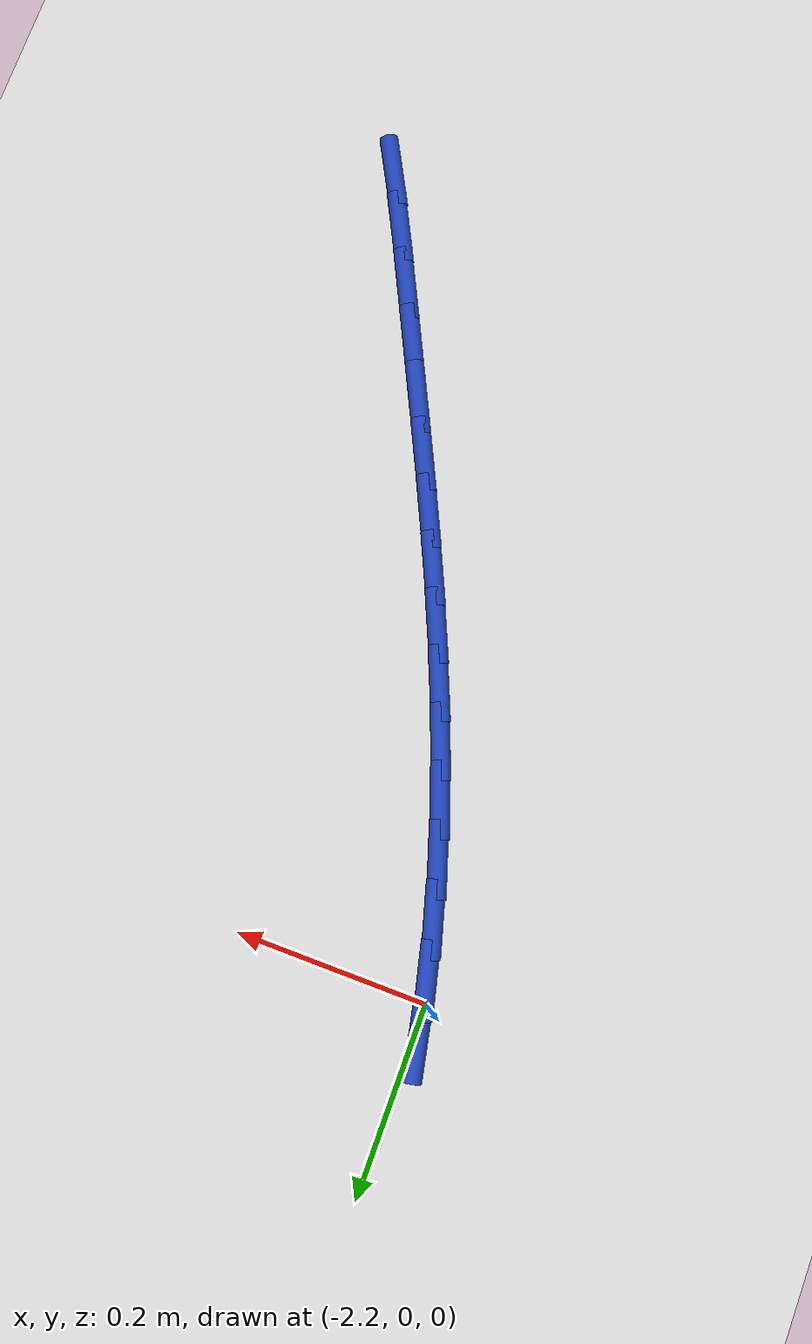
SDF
<sdf version="1.6">
 <world name="default">
  <model name="ground_plane">
   <static>1</static>
   <link name="link">
    <collision name="collision">
     <geometry><plane><normal>0 0 1</normal><size>100 100</size></plane></geometry>
     <surface><friction><ode><mu>100</mu><mu2>50</mu2></ode></friction></surface>
    </collision>
    <visual name="visual">
     <cast_shadows>0</cast_shadows>
     <geometry><plane><normal>0 0 1</normal><size>100 100</size></plane></geometry>
     <material>
      <script><uri>file://media/materials/scripts/gazebo.material</uri><name>Gazebo/WhiteGlow</name></script>
     </material>
    </visual>
   </link>
  </model>
  <model name="line">
   <link name="link_61">
    <pose>-2.204253208398933 0.03573756243532772 0.01 0 1.57 -1.3721566997780397</pose>
    <collision name="collision">
     <geometry><cylinder><radius>0.01</radius><length>0.08</length></cylinder></geometry>
    </collision>
    <visual name="visual">
     <material>
      <script><name>Gazebo/Blue</name><uri>file://media/materials/scripts/gazebo.material</uri></script>
     </material>
     <geometry><cylinder><radius>0.01</radius><length>0.08</length></cylinder></geometry>
    </visual>
   </link>
   <link name="link_62">
    <pose>-2.1923853055304887 -0.023220448612898632 0.01 0 1.57 -1.33196620559459</pose>
    <collision name="collision">
     <geometry><cylinder><radius>0.01</radius><length>0.08</length></cylinder></geometry>
    </collision>
    <visual name="visual">
     <material>
      <script><name>Gazebo/Blue</name><uri>file://media/materials/scripts/gazebo.material</uri></script>
     </material>
     <geometry><cylinder><radius>0.01</radius><length>0.08</length></cylinder></geometry>
    </visual>
   </link>
   <link name="link_63">
    <pose>-2.178271548088421 -0.08118793864115798 0.01 0 1.57 -1.2946612147233103</pose>
    <collision name="collision">
     <geometry><cylinder><radius>0.01</radius><length>0.08</length></cylinder></geometry>
    </collision>
    <visual name="visual">
     <material>
      <script><name>Gazebo/Blue</name><uri>file://media/materials/scripts/gazebo.material</uri></script>
     </material>
     <geometry><cylinder><radius>0.01</radius><length>0.08</length></cylinder></geometry>
    </visual>
   </link>
   <link name="link_64">
    <pose>-2.1620800988978273 -0.1383259312239225 0.01 0 1.57 -1.2605997873336034</pose>
    <collision name="collision">
     <geometry><cylinder><radius>0.01</radius><length>0.08</length></cylinder></geometry>
    </collision>
    <visual name="visual">
     <material>
      <script><name>Gazebo/Blue</name><uri>file://media/materials/scripts/gazebo.material</uri></script>
     </material>
     <geometry><cylinder><radius>0.01</radius><length>0.08</length></cylinder></geometry>
    </visual>
   </link>
   <link name="link_65">
    <pose>-2.1439791207838046 -0.19479544993566683 0.01 0 1.57 -1.2300580595943733</pose>
    <collision name="collision">
     <geometry><cylinder><radius>0.01</radius><length>0.08</length></cylinder></geometry>
    </collision>
    <visual name="visual">
     <material>
      <script><name>Gazebo/Blue</name><uri>file://media/materials/scripts/gazebo.material</uri></script>
     </material>
     <geometry><cylinder><radius>0.01</radius><length>0.08</length></cylinder></geometry>
    </visual>
   </link>
   <link name="link_66">
    <pose>-2.124136776571452 -0.2507575183508656 0.01 0 1.57 -1.203232279492027</pose>
    <collision name="collision">
     <geometry><cylinder><radius>0.01</radius><length>0.08</length></cylinder></geometry>
    </collision>
    <visual name="visual">
     <material>
      <script><name>Gazebo/Blue</name><uri>file://media/materials/scripts/gazebo.material</uri></script>
     </material>
     <geometry><cylinder><radius>0.01</radius><length>0.08</length></cylinder></geometry>
    </visual>
   </link>
   <link name="link_67">
    <pose>-2.102721229085866 -0.306373160043991 0.01 0 1.57 -1.1802452465181887</pose>
    <collision name="collision">
     <geometry><cylinder><radius>0.01</radius><length>0.08</length></cylinder></geometry>
    </collision>
    <visual name="visual">
     <material>
      <script><name>Gazebo/Blue</name><uri>file://media/materials/scripts/gazebo.material</uri></script>
     </material>
     <geometry><cylinder><radius>0.01</radius><length>0.08</length></cylinder></geometry>
    </visual>
   </link>
   <link name="link_68">
    <pose>-2.0799006411521446 -0.3618033985895177 0.01 0 1.57 -1.1611554060053926</pose>
    <collision name="collision">
     <geometry><cylinder><radius>0.01</radius><length>0.08</length></cylinder></geometry>
    </collision>
    <visual name="visual">
     <material>
      <script><name>Gazebo/Blue</name><uri>file://media/materials/scripts/gazebo.material</uri></script>
     </material>
     <geometry><cylinder><radius>0.01</radius><length>0.08</length></cylinder></geometry>
    </visual>
   </link>
   <link name="link_69">
    <pose>-2.055843175595385 -0.4172092575619194 0.01 0 1.57 -1.1459670041194803</pose>
    <collision name="collision">
     <geometry><cylinder><radius>0.01</radius><length>0.08</length></cylinder></geometry>
    </collision>
    <visual name="visual">
     <material>
      <script><name>Gazebo/Blue</name><uri>file://media/materials/scripts/gazebo.material</uri></script>
     </material>
     <geometry><cylinder><radius>0.01</radius><length>0.08</length></cylinder></geometry>
    </visual>
   </link>
   <link name="link_70">
    <pose>-2.0307169952406863 -0.4727517605356709 0.01 0 1.57 -1.134640057112596</pose>
    <collision name="collision">
     <geometry><cylinder><radius>0.01</radius><length>0.08</length></cylinder></geometry>
    </collision>
    <visual name="visual">
     <material>
      <script><name>Gazebo/Blue</name><uri>file://media/materials/scripts/gazebo.material</uri></script>
     </material>
     <geometry><cylinder><radius>0.01</radius><length>0.08</length></cylinder></geometry>
    </visual>
   </link>
   <link name="link_71">
    <pose>-2.0046902629131442 -0.5285919310852443 0.01 0 1.57 -1.1270992973499634</pose>
    <collision name="collision">
     <geometry><cylinder><radius>0.01</radius><length>0.08</length></cylinder></geometry>
    </collision>
    <visual name="visual">
     <material>
      <script><name>Gazebo/Blue</name><uri>file://media/materials/scripts/gazebo.material</uri></script>
     </material>
     <geometry><cylinder><radius>0.01</radius><length>0.08</length></cylinder></geometry>
    </visual>
   </link>
   <link name="link_72">
    <pose>-1.9779311414378573 -0.5848907927851139 0.01 0 1.57 -1.1232416381896035</pose>
    <collision name="collision">
     <geometry><cylinder><radius>0.01</radius><length>0.08</length></cylinder></geometry>
    </collision>
    <visual name="visual">
     <material>
      <script><name>Gazebo/Blue</name><uri>file://media/materials/scripts/gazebo.material</uri></script>
     </material>
     <geometry><cylinder><radius>0.01</radius><length>0.08</length></cylinder></geometry>
    </visual>
   </link>
   <link name="link_73">
    <pose>-1.9506077936399233 -0.641809369209754 0.01 0 1.57 -1.1228031624462778</pose>
    <collision name="collision">
     <geometry><cylinder><radius>0.01</radius><length>0.08</length></cylinder></geometry>
    </collision>
    <visual name="visual">
     <material>
      <script><name>Gazebo/Blue</name><uri>file://media/materials/scripts/gazebo.material</uri></script>
     </material>
     <geometry><cylinder><radius>0.01</radius><length>0.08</length></cylinder></geometry>
    </visual>
   </link>
   <link name="link_74">
    <pose>-1.9228829594076904 -0.6994994499242722 0.01 0 1.57 -1.119904634698435</pose>
    <collision name="collision">
     <geometry><cylinder><radius>0.01</radius><length>0.08</length></cylinder></geometry>
    </collision>
    <visual name="visual">
     <material>
      <script><name>Gazebo/Blue</name><uri>file://media/materials/scripts/gazebo.material</uri></script>
     </material>
     <geometry><cylinder><radius>0.01</radius><length>0.08</length></cylinder></geometry>
    </visual>
   </link>
   <link name="link_75">
    <pose>-1.8946922386504246 -0.7577260575459919 0.01 0 1.57 -1.1068541910697094</pose>
    <collision name="collision">
     <geometry><cylinder><radius>0.01</radius><length>0.08</length></cylinder></geometry>
    </collision>
    <visual name="visual">
     <material>
      <script><name>Gazebo/Blue</name><uri>file://media/materials/scripts/gazebo.material</uri></script>
     </material>
     <geometry><cylinder><radius>0.01</radius><length>0.08</length></cylinder></geometry>
    </visual>
   </link>
   <link name="link_76">
    <pose>-1.8656663616849762 -0.8157350921572912 0.01 0 1.57 -1.082873640339694</pose>
    <collision name="collision">
     <geometry><cylinder><radius>0.01</radius><length>0.08</length></cylinder></geometry>
    </collision>
    <visual name="visual">
     <material>
      <script><name>Gazebo/Blue</name><uri>file://media/materials/scripts/gazebo.material</uri></script>
     </material>
     <geometry><cylinder><radius>0.01</radius><length>0.08</length></cylinder></geometry>
    </visual>
   </link>
  </model>
 </world>
</sdf>
